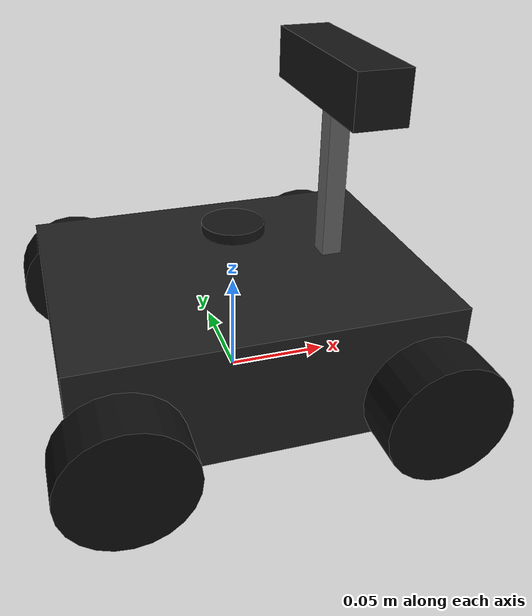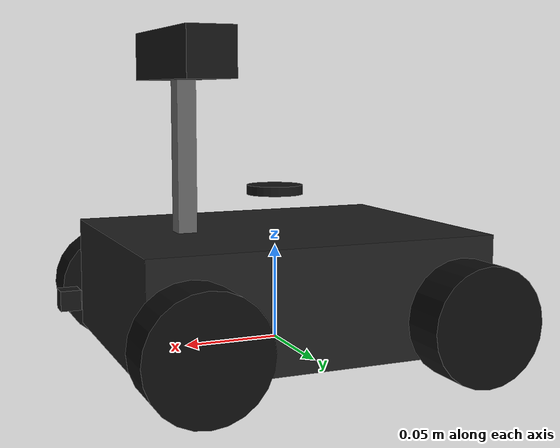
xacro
<?xml version="1.0"?>
<robot name="custom_bot" xmlns:xacro="http://www.ros.org/wiki/xacro">

  <!-- PARAMETERS - estimated from photo, adjust once you measure   -->
  <!-- the real chassis with calipers/tape measure                  -->
  <xacro:property name="base_length" value="0.18"/>
  <xacro:property name="base_width"  value="0.14"/>
  <xacro:property name="base_height" value="0.06"/>
  <xacro:property name="base_mass"   value="1.5"/>    <!-- kg, board stack + frame -->

  <xacro:property name="wheel_radius" value="0.03"/>
  <xacro:property name="wheel_width"  value="0.025"/>
  <xacro:property name="wheel_mass"   value="0.08"/>  <!-- kg -->

  <xacro:property name="wheel_x_offset" value="0.07"/>
  <xacro:property name="wheel_y_offset" value="0.085"/>
  <xacro:property name="wheel_z_offset" value="-0.01"/>

  <!-- camera sits on a raised front bracket, well above the chassis -->
  <xacro:property name="camera_mount_height" value="0.09"/>
  <xacro:property name="camera_x_offset" value="0.05"/>

  <!-- MATERIALS                                                     -->
  <material name="chassis_dark"><color rgba="0.12 0.12 0.12 1"/></material>
  <material name="wheel_yellow"><color rgba="0.9 0.8 0.1 1"/></material>
  <material name="wheel_black"><color rgba="0.05 0.05 0.05 1"/></material>
  <material name="sensor_black"><color rgba="0.08 0.08 0.08 1"/></material>
  <material name="bracket_gray"><color rgba="0.4 0.4 0.4 1"/></material>

  <!-- MACRO: WHEEL (yellow rim + black tire, matches photo)         -->
  <xacro:macro name="wheel" params="prefix x_reflect y_reflect">
    <link name="${prefix}_wheel_link">
      <visual>
        <origin xyz="0 0 0" rpy="1.5708 0 0"/>
        <geometry><cylinder radius="${wheel_radius}" length="${wheel_width}"/></geometry>
        <material name="wheel_black"/>
      </visual>
      <collision>
        <origin xyz="0 0 0" rpy="1.5708 0 0"/>
        <geometry><cylinder radius="${wheel_radius}" length="${wheel_width}"/></geometry>
      </collision>
      <inertial>
        <mass value="${wheel_mass}"/>
        <inertia ixx="0.00003" ixy="0" ixz="0" iyy="0.00003" iyz="0" izz="0.00003"/>
      </inertial>
    </link>

    <joint name="${prefix}_wheel_joint" type="continuous">
      <parent link="base_link"/>
      <child link="${prefix}_wheel_link"/>
      <origin xyz="${x_reflect*wheel_x_offset} ${y_reflect*wheel_y_offset} ${wheel_z_offset}" rpy="0 0 0"/>
      <axis xyz="0 1 0"/>
    </joint>
  </xacro:macro>

  <!-- BASE                                                          -->
  <link name="base_footprint"/>

  <link name="base_link">
    <visual>
      <geometry><box size="${base_length} ${base_width} ${base_height}"/></geometry>
      <material name="chassis_dark"/>
    </visual>
    <collision>
      <geometry><box size="${base_length} ${base_width} ${base_height}"/></geometry>
    </collision>
    <inertial>
      <mass value="${base_mass}"/>
      <inertia ixx="0.004" ixy="0" ixz="0" iyy="0.006" iyz="0" izz="0.008"/>
    </inertial>
  </link>

  <joint name="base_joint" type="fixed">
    <parent link="base_footprint"/>
    <child link="base_link"/>
    <origin xyz="0 0 ${wheel_radius}" rpy="0 0 0"/>
  </joint>

  <!-- Four independently driven wheels, wide stance like the photo -->
  <xacro:wheel prefix="front_left"  x_reflect="1"  y_reflect="1"/>
  <xacro:wheel prefix="front_right" x_reflect="1"  y_reflect="-1"/>
  <xacro:wheel prefix="rear_left"   x_reflect="-1" y_reflect="1"/>
  <xacro:wheel prefix="rear_right"  x_reflect="-1" y_reflect="-1"/>

  <!-- CAMERA MOUNT - raised bracket + camera, front of chassis      -->
  <link name="camera_bracket_link">
    <visual>
      <geometry><box size="0.01 0.01 ${camera_mount_height}"/></geometry>
      <material name="bracket_gray"/>
    </visual>
  </link>
  <joint name="camera_bracket_joint" type="fixed">
    <parent link="base_link"/>
    <child link="camera_bracket_link"/>
    <origin xyz="${camera_x_offset} 0 ${base_height/2 + camera_mount_height/2}" rpy="0 0 0"/>
  </joint>

  <link name="camera_link">
    <visual>
      <geometry><box size="0.025 0.09 0.025"/></geometry>
      <material name="sensor_black"/>
    </visual>
    <collision>
      <geometry><box size="0.025 0.09 0.025"/></geometry>
    </collision>
    <inertial>
      <mass value="0.05"/>
      <inertia ixx="0.00001" ixy="0" ixz="0" iyy="0.00001" iyz="0" izz="0.00001"/>
    </inertial>
  </link>
  <joint name="camera_joint" type="fixed">
    <parent link="camera_bracket_link"/>
    <child link="camera_link"/>
    <origin xyz="0 0 ${camera_mount_height/2}" rpy="0 0 0"/>
  </joint>

  <!-- optical frame, so image data uses the standard camera convention -->
  <link name="camera_optical_link"/>
  <joint name="camera_optical_joint" type="fixed">
    <parent link="camera_link"/>
    <child link="camera_optical_link"/>
    <origin xyz="0 0 0" rpy="${-pi/2} 0 ${-pi/2}"/>
  </joint>

  <!-- IMU                                                           -->
  <link name="imu_link">
    <inertial>
      <mass value="0.001"/>
      <inertia ixx="0.000001" ixy="0" ixz="0" iyy="0.000001" iyz="0" izz="0.000001"/>
    </inertial>
  </link>
  <joint name="imu_joint" type="fixed">
    <parent link="base_link"/>
    <child link="imu_link"/>
    <origin xyz="0 0 0" rpy="0 0 0"/>
  </joint>

  <!-- TIME-OF-FLIGHT (VL53L1X) - FRONT                              -->
  <!-- Mount position is a placeholder: hardware team hasn't picked  -->
  <!-- final placement yet. Currently sits front-center at chassis   -->
  <!-- edge height. Update x/y/z below once that's decided.          -->
  <xacro:property name="tof_x_offset" value="${base_length/2 + 0.02}"/>
  <xacro:property name="tof_z_offset" value="0.0"/>

  <link name="tof_front_link">
    <visual>
      <geometry><box size="0.01 0.01 0.01"/></geometry>
      <material name="sensor_black"/>
    </visual>
    <inertial>
      <mass value="0.005"/>
      <inertia ixx="0.000001" ixy="0" ixz="0" iyy="0.000001" iyz="0" izz="0.000001"/>
    </inertial>
  </link>
  <joint name="tof_front_joint" type="fixed">
    <parent link="base_link"/>
    <child link="tof_front_link"/>
    <origin xyz="${tof_x_offset} 0 ${tof_z_offset}" rpy="0 0 0"/>
  </joint>

  <!-- GAZEBO: skid-steer drive plugin (4 independently driven       -->
  <!-- wheels, differential steering left-pair vs right-pair)        -->
	<gazebo>
	  <plugin name="skid_steer_drive_controller" filename="libgazebo_ros_diff_drive.so">
		<update_rate>50</update_rate>

		<num_wheel_pairs>2</num_wheel_pairs>

		<!-- front pair -->
		<left_joint>front_left_wheel_joint</left_joint>
		<right_joint>front_right_wheel_joint</right_joint>

		<!-- rear pair -->
		<left_joint>rear_left_wheel_joint</left_joint>
		<right_joint>rear_right_wheel_joint</right_joint>

		<wheel_separation>${wheel_y_offset*2}</wheel_separation>
		<wheel_separation>${wheel_y_offset*2}</wheel_separation>

		<wheel_diameter>${wheel_radius*2}</wheel_diameter>
		<wheel_diameter>${wheel_radius*2}</wheel_diameter>

		<max_wheel_torque>10</max_wheel_torque>
		<max_wheel_acceleration>2.0</max_wheel_acceleration>

		<odometry_frame>odom</odometry_frame>
		<robot_base_frame>base_footprint</robot_base_frame>
		<publish_odom>true</publish_odom>
		<publish_odom_tf>true</publish_odom_tf>
		<publish_wheel_tf>true</publish_wheel_tf>
	  </plugin>
	</gazebo>

  <!-- Gazebo camera sensor plugin -->
  <gazebo reference="camera_link">
    <sensor type="camera" name="front_camera">
      <update_rate>30.0</update_rate>
      <camera>
        <horizontal_fov>1.5708</horizontal_fov>
        <image><width>640</width><height>480</height><format>R8G8B8</format></image>
        <clip><near>0.02</near><far>300</far></clip>
      </camera>
      <plugin name="camera_controller" filename="libgazebo_ros_camera.so">
        <frame_name>camera_optical_link</frame_name>
        <ros>
          <namespace>/camera</namespace>
        </ros>
      </plugin>
    </sensor>
  </gazebo>

  <!-- Gazebo ToF (VL53L1X) ray sensor plugin - front -->
  <gazebo reference="tof_front_link">
    <sensor type="ray" name="tof_front_sensor">
	  <update_rate>20.0</update_rate>
	  <always_on>true</always_on>
	  <visualize>true</visualize>
	  <ray>
        <scan>
          <horizontal>
            <samples>5</samples>
            <resolution>1</resolution>
            <min_angle>-0.4</min_angle>
            <max_angle>0.4</max_angle>
          </horizontal>
          <vertical>
            <samples>2</samples>
            <resolution>1</resolution>
            <min_angle>-0.01</min_angle>
            <max_angle>0.07</max_angle>
          </vertical>
        </scan>
        <range>
          <min>0.04</min>
          <max>8.0</max>
          <resolution>0.001</resolution>
        </range>
        <noise>
          <type>gaussian</type>
          <mean>0.0</mean>
          <stddev>0.01</stddev>  <!-- VL53L1X is +/-1-2cm typical, tune once calibrated -->
        </noise>
      </ray>
      <plugin name="tof_front_plugin" filename="libgazebo_ros_ray_sensor.so">
        <ros>
          <namespace>/tof_front</namespace>
          <remapping>~/out:=range</remapping>
        </ros>
        <output_type>sensor_msgs/Range</output_type>
        <radiation_type>infrared</radiation_type>
        <frame_name>tof_front_link</frame_name>
      </plugin>
    </sensor>
  </gazebo>

  <!-- GPS                                                           -->
  <!-- Mounted high/center for clear sky view. Real modules (e.g.    -->
  <!-- u-blox NEO-6M/7M/8M) should sit away from motors/ESCs to      -->
  <!-- reduce EMI - adjust xyz once the hardware team places it.     -->
  <link name="gps_link">
    <visual>
      <geometry><cylinder radius="0.015" length="0.005"/></geometry>
      <material name="sensor_black"/>
    </visual>
    <inertial>
      <mass value="0.02"/>
      <inertia ixx="0.000001" ixy="0" ixz="0" iyy="0.000001" iyz="0" izz="0.000001"/>
    </inertial>
  </link>
  <joint name="gps_joint" type="fixed">
    <parent link="base_link"/>
    <child link="gps_link"/>
    <origin xyz="0 0 ${base_height/2 + 0.02}" rpy="0 0 0"/>
  </joint>

  <gazebo reference="gps_link">
    <sensor type="gps" name="gps_sensor">
      <always_on>true</always_on>
      <update_rate>5.0</update_rate>
      <gps>
        <position_sensing>
          <horizontal>
            <noise type="gaussian"><mean>0.0</mean><stddev>2.0</stddev></noise>
          </horizontal>
          <vertical>
            <noise type="gaussian"><mean>0.0</mean><stddev>3.0</stddev></noise>
          </vertical>
        </position_sensing>
      </gps>
      <plugin name="gps_plugin" filename="libgazebo_ros_gps_sensor.so">
        <ros>
          <namespace>/gps</namespace>
          <remapping>~/out:=fix</remapping>
        </ros>
        <frame_name>gps_link</frame_name>
      </plugin>
    </sensor>
  </gazebo>

  <!-- GAZEBO GROUND TRUTH POSE - sim-only, feeds the perfect-map    -->
  <!-- localization bridge. Not present on real hardware.            -->
  <gazebo>
    <plugin name="ground_truth_p3d" filename="libgazebo_ros_p3d.so">
      <ros>
        <namespace>/ground_truth</namespace>
        <remapping>odom:=pose</remapping>
      </ros>
      <body_name>base_footprint</body_name>
      <frame_name>map</frame_name>
      <update_rate>30.0</update_rate>
    </plugin>
  </gazebo>

  <gazebo reference="imu_link">
    <sensor type="imu" name="imu_sensor">
      <always_on>true</always_on>
      <update_rate>100.0</update_rate>
      <imu>
        <angular_velocity>
          <x><noise type="gaussian"><mean>0.0</mean><stddev>0.0002</stddev></noise></x>
          <y><noise type="gaussian"><mean>0.0</mean><stddev>0.0002</stddev></noise></y>
          <z><noise type="gaussian"><mean>0.0</mean><stddev>0.0002</stddev></noise></z>
        </angular_velocity>
        <linear_acceleration>
          <x><noise type="gaussian"><mean>0.0</mean><stddev>0.017</stddev></noise></x>
          <y><noise type="gaussian"><mean>0.0</mean><stddev>0.017</stddev></noise></y>
          <z><noise type="gaussian"><mean>0.0</mean><stddev>0.017</stddev></noise></z>
        </linear_acceleration>
      </imu>
      <plugin name="imu_plugin" filename="libgazebo_ros_imu_sensor.so">
        <ros>
          <namespace>/imu</namespace>
          <remapping>~/out:=data</remapping>
        </ros>
        <frame_name>imu_link</frame_name>
      </plugin>
    </sensor>
  </gazebo>

</robot>
